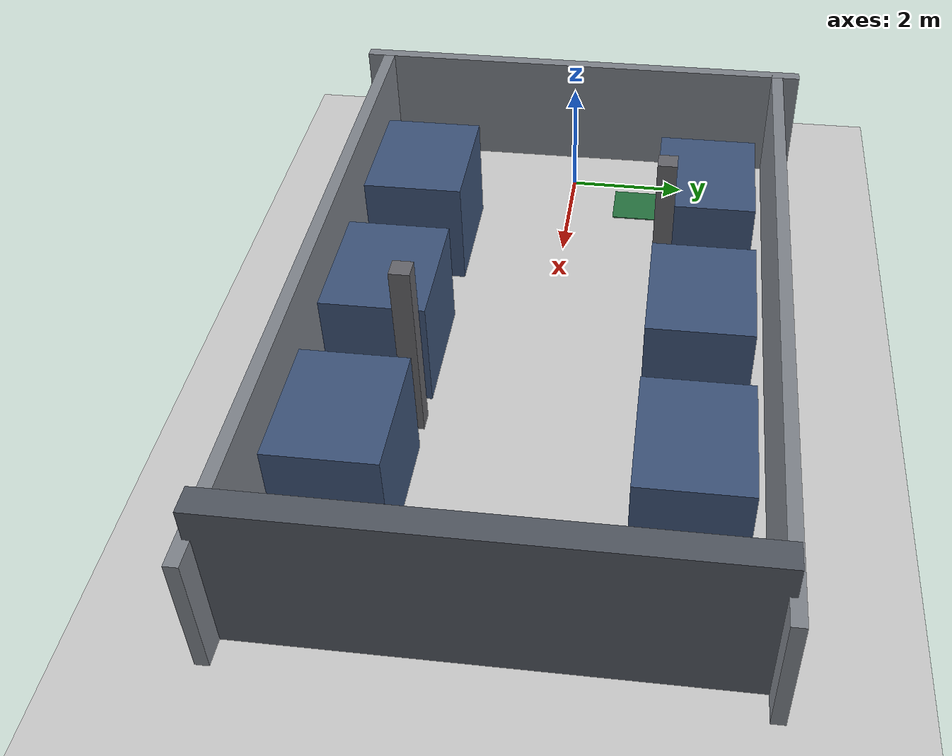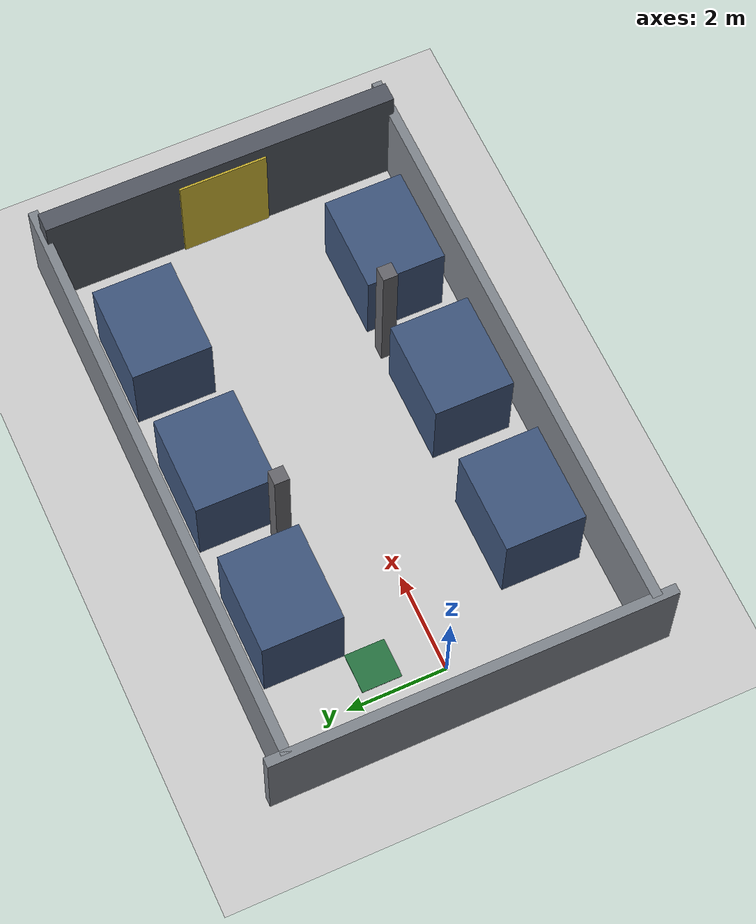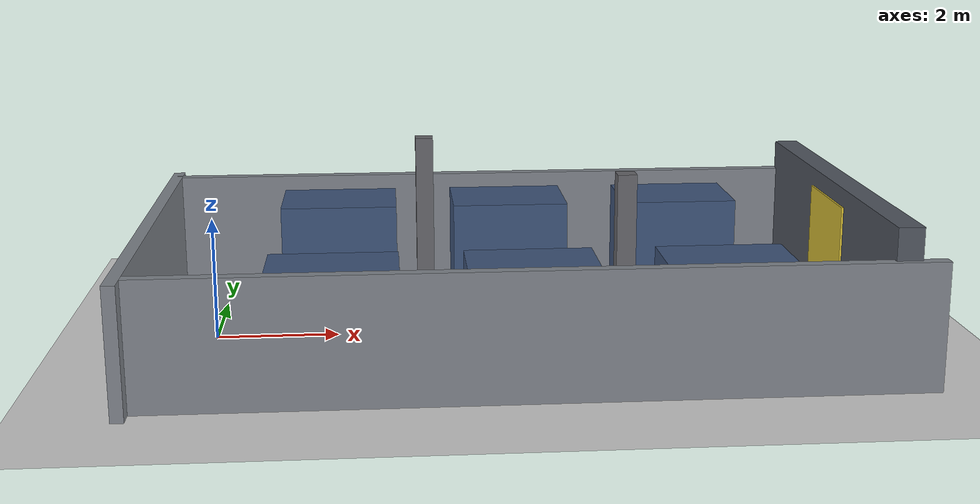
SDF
<?xml version="1.0"?>
<sdf version="1.6">
  <world name="warehouse_world">

    <include><uri>model://sun</uri></include>
    <include><uri>model://ground_plane</uri></include>

    <light name="fill" type="directional">
      <pose>4 0 9 0 0 0</pose>
      <diffuse>0.55 0.55 0.55 1</diffuse>
      <specular>0.1 0.1 0.1 1</specular>
      <direction>-0.2 0.1 -1.0</direction>
      <cast_shadows>false</cast_shadows>
    </light>

    <physics type="ode">
      <max_step_size>0.005</max_step_size>
      <real_time_factor>1.0</real_time_factor>
      <real_time_update_rate>200</real_time_update_rate>
    </physics>

    <!-- Lets the pedestrian / robot-agent managers teleport bodies. -->
    <plugin name="gazebo_ros_state" filename="libgazebo_ros_state.so">
      <ros><namespace>/gazebo</namespace></ros>
      <update_rate>20.0</update_rate>
    </plugin>

    <!-- ===================== Perimeter walls ===================== -->
    <model name="wall_west"><static>true</static><link name="l">
      <collision name="c"><pose>-1.0 0 1.0 0 0 0</pose>
        <geometry><box><size>0.2 8.0 2.0</size></box></geometry></collision>
      <visual name="v"><pose>-1.0 0 1.0 0 0 0</pose>
        <geometry><box><size>0.2 8.0 2.0</size></box></geometry>
        <material><ambient>0.5 0.52 0.55 1</ambient><diffuse>0.5 0.52 0.55 1</diffuse></material>
      </visual></link></model>
    <model name="wall_north"><static>true</static><link name="l">
      <collision name="c"><pose>5.0 3.6 1.0 0 0 0</pose>
        <geometry><box><size>12.0 0.2 2.0</size></box></geometry></collision>
      <visual name="v"><pose>5.0 3.6 1.0 0 0 0</pose>
        <geometry><box><size>12.0 0.2 2.0</size></box></geometry>
        <material><ambient>0.5 0.52 0.55 1</ambient><diffuse>0.5 0.52 0.55 1</diffuse></material>
      </visual></link></model>
    <model name="wall_south"><static>true</static><link name="l">
      <collision name="c"><pose>5.0 -3.6 1.0 0 0 0</pose>
        <geometry><box><size>12.0 0.2 2.0</size></box></geometry></collision>
      <visual name="v"><pose>5.0 -3.6 1.0 0 0 0</pose>
        <geometry><box><size>12.0 0.2 2.0</size></box></geometry>
        <material><ambient>0.5 0.52 0.55 1</ambient><diffuse>0.5 0.52 0.55 1</diffuse></material>
      </visual></link></model>

    <!-- ===================== Loading dock (east end) ===================== -->
    <model name="dock_wall"><static>true</static><link name="l">
      <collision name="c"><pose>10.4 0 1.25 0 0 0</pose>
        <geometry><box><size>0.4 7.2 2.5</size></box></geometry></collision>
      <visual name="v"><pose>10.4 0 1.25 0 0 0</pose>
        <geometry><box><size>0.4 7.2 2.5</size></box></geometry>
        <material><ambient>0.32 0.34 0.38 1</ambient><diffuse>0.32 0.34 0.38 1</diffuse></material>
      </visual></link></model>
    <model name="dock_door"><static>true</static><link name="l">
      <visual name="v"><pose>10.19 0 1.1 0 0 0</pose>
        <geometry><box><size>0.05 1.8 2.2</size></box></geometry>
        <material><ambient>0.85 0.75 0.20 1</ambient><diffuse>0.85 0.75 0.20 1</diffuse></material>
      </visual></link></model>

    <!-- ===================== North pallet racks (y band 1.6..3.2) ===================== -->
    <model name="rack_n1"><static>true</static><link name="l">
      <collision name="c"><pose>2.0 2.4 0.9 0 0 0</pose>
        <geometry><box><size>2.0 1.6 1.8</size></box></geometry></collision>
      <visual name="v"><pose>2.0 2.4 0.9 0 0 0</pose>
        <geometry><box><size>2.0 1.6 1.8</size></box></geometry>
        <material><ambient>0.24 0.33 0.48 1</ambient><diffuse>0.24 0.33 0.48 1</diffuse></material>
      </visual></link></model>
    <model name="rack_n2"><static>true</static><link name="l">
      <collision name="c"><pose>5.0 2.4 0.9 0 0 0</pose>
        <geometry><box><size>2.0 1.6 1.8</size></box></geometry></collision>
      <visual name="v"><pose>5.0 2.4 0.9 0 0 0</pose>
        <geometry><box><size>2.0 1.6 1.8</size></box></geometry>
        <material><ambient>0.24 0.33 0.48 1</ambient><diffuse>0.24 0.33 0.48 1</diffuse></material>
      </visual></link></model>
    <model name="rack_n3"><static>true</static><link name="l">
      <collision name="c"><pose>8.0 2.4 0.9 0 0 0</pose>
        <geometry><box><size>2.0 1.6 1.8</size></box></geometry></collision>
      <visual name="v"><pose>8.0 2.4 0.9 0 0 0</pose>
        <geometry><box><size>2.0 1.6 1.8</size></box></geometry>
        <material><ambient>0.24 0.33 0.48 1</ambient><diffuse>0.24 0.33 0.48 1</diffuse></material>
      </visual></link></model>

    <!-- ===================== South pallet racks (y band -3.2..-1.6) ===================== -->
    <model name="rack_s1"><static>true</static><link name="l">
      <collision name="c"><pose>2.0 -2.4 0.9 0 0 0</pose>
        <geometry><box><size>2.0 1.6 1.8</size></box></geometry></collision>
      <visual name="v"><pose>2.0 -2.4 0.9 0 0 0</pose>
        <geometry><box><size>2.0 1.6 1.8</size></box></geometry>
        <material><ambient>0.24 0.33 0.48 1</ambient><diffuse>0.24 0.33 0.48 1</diffuse></material>
      </visual></link></model>
    <model name="rack_s2"><static>true</static><link name="l">
      <collision name="c"><pose>5.0 -2.4 0.9 0 0 0</pose>
        <geometry><box><size>2.0 1.6 1.8</size></box></geometry></collision>
      <visual name="v"><pose>5.0 -2.4 0.9 0 0 0</pose>
        <geometry><box><size>2.0 1.6 1.8</size></box></geometry>
        <material><ambient>0.24 0.33 0.48 1</ambient><diffuse>0.24 0.33 0.48 1</diffuse></material>
      </visual></link></model>
    <model name="rack_s3"><static>true</static><link name="l">
      <collision name="c"><pose>8.0 -2.4 0.9 0 0 0</pose>
        <geometry><box><size>2.0 1.6 1.8</size></box></geometry></collision>
      <visual name="v"><pose>8.0 -2.4 0.9 0 0 0</pose>
        <geometry><box><size>2.0 1.6 1.8</size></box></geometry>
        <material><ambient>0.24 0.33 0.48 1</ambient><diffuse>0.24 0.33 0.48 1</diffuse></material>
      </visual></link></model>

    <!-- Structural columns near the rack ends (occluders at aisle mouths). -->
    <model name="col_1"><static>true</static><link name="l">
      <collision name="c"><pose>3.5 1.75 1.5 0 0 0</pose>
        <geometry><box><size>0.3 0.3 3.0</size></box></geometry></collision>
      <visual name="v"><pose>3.5 1.75 1.5 0 0 0</pose>
        <geometry><box><size>0.3 0.3 3.0</size></box></geometry>
        <material><ambient>0.4 0.4 0.42 1</ambient><diffuse>0.4 0.4 0.42 1</diffuse></material>
      </visual></link></model>
    <model name="col_2"><static>true</static><link name="l">
      <collision name="c"><pose>6.5 -1.75 1.5 0 0 0</pose>
        <geometry><box><size>0.3 0.3 3.0</size></box></geometry></collision>
      <visual name="v"><pose>6.5 -1.75 1.5 0 0 0</pose>
        <geometry><box><size>0.3 0.3 3.0</size></box></geometry>
        <material><ambient>0.4 0.4 0.42 1</ambient><diffuse>0.4 0.4 0.42 1</diffuse></material>
      </visual></link></model>

    <!-- Charging pad (visual only) near the west entrance. -->
    <model name="charging_pad"><static>true</static><link name="l">
      <visual name="v"><pose>0.6 1.2 0.01 0 0 0</pose>
        <geometry><box><size>0.8 0.8 0.02</size></box></geometry>
        <material><ambient>0.15 0.45 0.25 1</ambient><diffuse>0.15 0.45 0.25 1</diffuse></material>
      </visual></link></model>

  </world>
</sdf>
